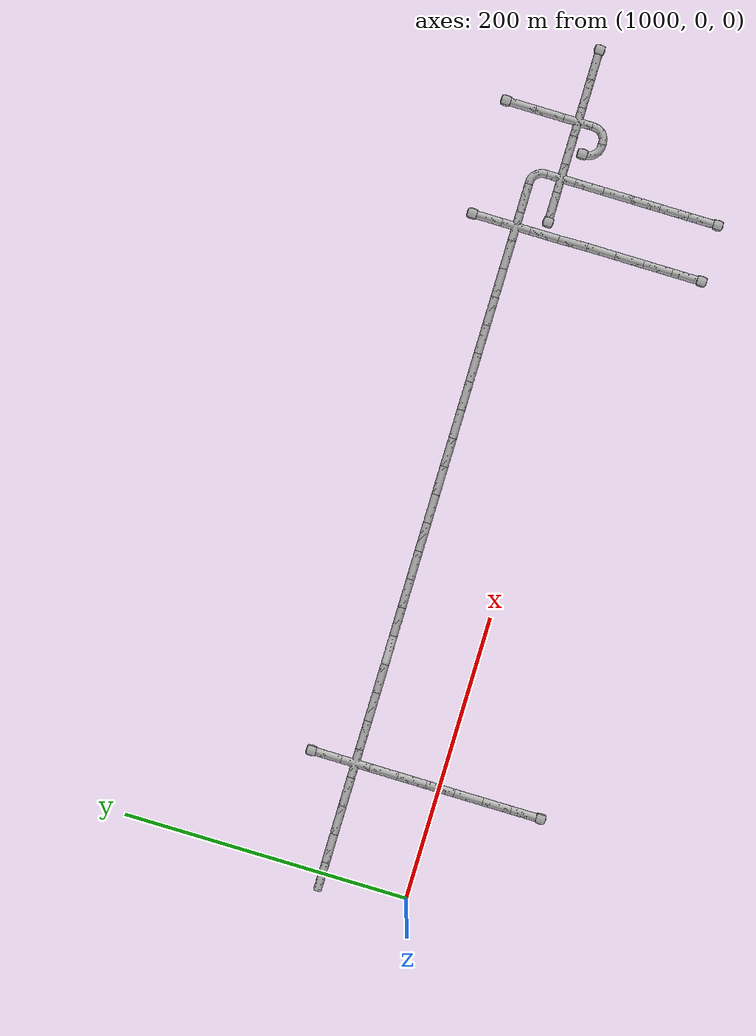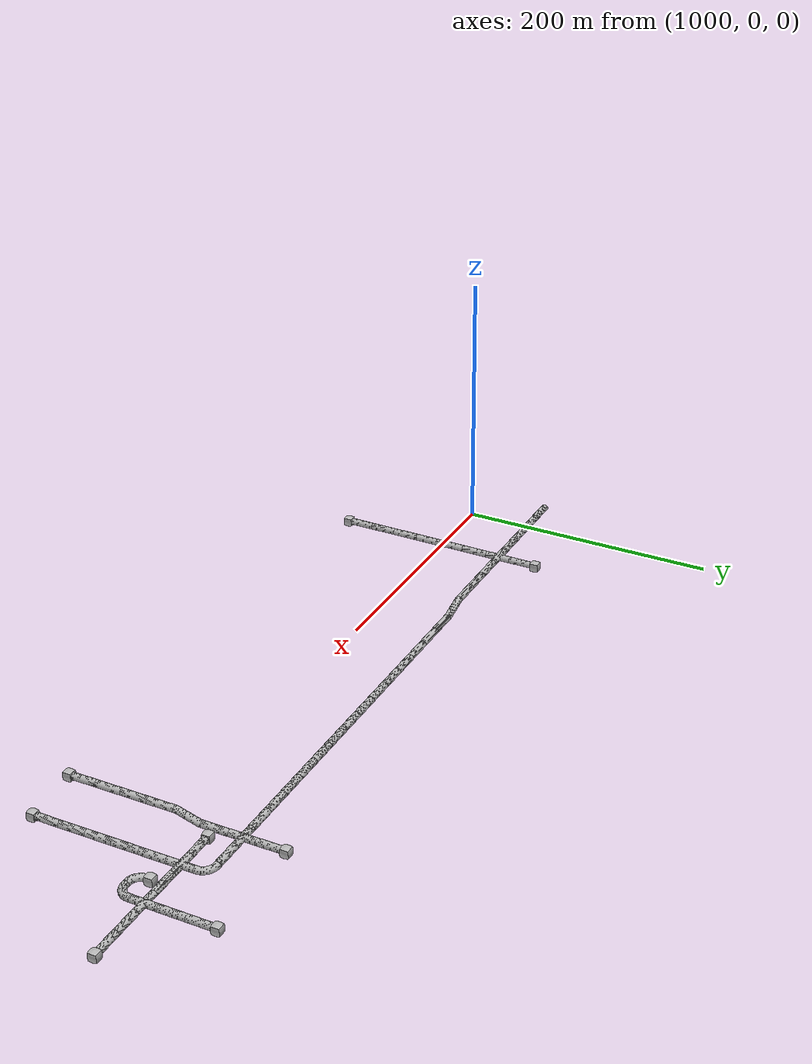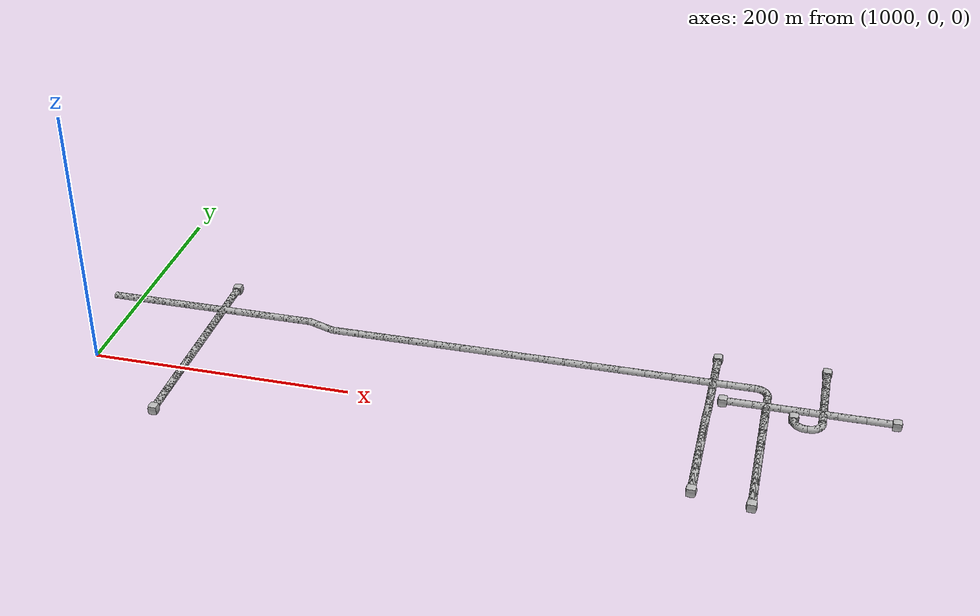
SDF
<sdf version="1.6">
 <world name="tunnel_circuit_04">
  <include>
   <name>tile_31</name>
   <uri>model://tunnel_tile_5</uri>
   <pose>1080.000000 80.000000 15.000000 0 0 3.141593</pose>
  </include>
  <include>
   <name>tile_32</name>
   <uri>model://tunnel_tile_blocker</uri>
   <pose>1080.000000 91.000000 15.000000 0 0 0.000000</pose>
  </include>
  <include>
   <name>extinguisher_1</name>
   <uri>model://Extinguisher</uri>
   <pose>1081.000000 83.000000 15.000000 0 0 0.000000</pose>
  </include>
  <include>
   <name>tile_33</name>
   <uri>model://tunnel_tile_5</uri>
   <pose>1460.000000 80.000000 10.000000 0 0 3.141593</pose>
  </include>
  <include>
   <name>tile_34</name>
   <uri>model://tunnel_tile_blocker</uri>
   <pose>1460.000000 91.000000 10.000000 0 0 0.000000</pose>
  </include>
  <include>
   <name>tile_35</name>
   <uri>model://tunnel_tile_5</uri>
   <pose>1540.000000 80.000000 10.000000 0 0 3.141593</pose>
  </include>
  <include>
   <name>tile_36</name>
   <uri>model://tunnel_tile_blocker</uri>
   <pose>1540.000000 91.000000 10.000000 0 0 0.000000</pose>
  </include>
  <include>
   <name>tile_65</name>
   <uri>model://tunnel_tile_5</uri>
   <pose>1000.000000 60.000000 15.000000 0 0 1.570796</pose>
  </include>
  <include>
   <name>tile_66</name>
   <uri>model://tunnel_tile_5</uri>
   <pose>1020.000000 60.000000 15.000000 0 0 1.570796</pose>
  </include>
  <include>
   <name>tile_67</name>
   <uri>model://tunnel_tile_5</uri>
   <pose>1040.000000 60.000000 15.000000 0 0 1.570796</pose>
  </include>
  <include>
   <name>tile_68</name>
   <uri>model://tunnel_tile_5</uri>
   <pose>1060.000000 60.000000 15.000000 0 0 1.570796</pose>
  </include>
  <include>
   <name>tile_69</name>
   <uri>model://tunnel_tile_1</uri>
   <pose>1080.000000 60.000000 15.000000 0 0 0.000000</pose>
  </include>
  <include>
   <name>tile_70</name>
   <uri>model://tunnel_tile_5</uri>
   <pose>1100.000000 60.000000 15.000000 0 0 1.570796</pose>
  </include>
  <include>
   <name>tile_71</name>
   <uri>model://tunnel_tile_5</uri>
   <pose>1120.000000 60.000000 15.000000 0 0 1.570796</pose>
  </include>
  <include>
   <name>tile_72</name>
   <uri>model://tunnel_tile_5</uri>
   <pose>1140.000000 60.000000 15.000000 0 0 1.570796</pose>
  </include>
  <include>
   <name>tile_73</name>
   <uri>model://tunnel_tile_6</uri>
   <pose>1160.000000 60.000000 10.000000 0 0 1.570796</pose>
  </include>
  <include>
   <name>tile_74</name>
   <uri>model://tunnel_tile_5</uri>
   <pose>1180.000000 60.000000 10.000000 0 0 1.570796</pose>
  </include>
  <include>
   <name>tile_75</name>
   <uri>model://tunnel_tile_5</uri>
   <pose>1200.000000 60.000000 10.000000 0 0 1.570796</pose>
  </include>
  <include>
   <name>tile_76</name>
   <uri>model://tunnel_tile_5</uri>
   <pose>1220.000000 60.000000 10.000000 0 0 1.570796</pose>
  </include>
  <include>
   <name>tile_77</name>
   <uri>model://tunnel_tile_5</uri>
   <pose>1240.000000 60.000000 10.000000 0 0 1.570796</pose>
  </include>
  <include>
   <name>tile_78</name>
   <uri>model://tunnel_tile_5</uri>
   <pose>1260.000000 60.000000 10.000000 0 0 1.570796</pose>
  </include>
  <include>
   <name>tile_79</name>
   <uri>model://tunnel_tile_5</uri>
   <pose>1280.000000 60.000000 10.000000 0 0 1.570796</pose>
  </include>
  <include>
   <name>tile_80</name>
   <uri>model://tunnel_tile_5</uri>
   <pose>1300.000000 60.000000 10.000000 0 0 1.570796</pose>
  </include>
  <include>
   <name>tile_81</name>
   <uri>model://tunnel_tile_5</uri>
   <pose>1320.000000 60.000000 10.000000 0 0 1.570796</pose>
  </include>
  <include>
   <name>tile_82</name>
   <uri>model://tunnel_tile_5</uri>
   <pose>1340.000000 60.000000 10.000000 0 0 1.570796</pose>
  </include>
  <include>
   <name>tile_83</name>
   <uri>model://tunnel_tile_5</uri>
   <pose>1360.000000 60.000000 10.000000 0 0 1.570796</pose>
  </include>
  <include>
   <name>tile_84</name>
   <uri>model://tunnel_tile_5</uri>
   <pose>1380.000000 60.000000 10.000000 0 0 1.570796</pose>
  </include>
  <include>
   <name>tile_85</name>
   <uri>model://tunnel_tile_5</uri>
   <pose>1400.000000 60.000000 10.000000 0 0 1.570796</pose>
  </include>
  <include>
   <name>tile_86</name>
   <uri>model://tunnel_tile_5</uri>
   <pose>1420.000000 60.000000 10.000000 0 0 1.570796</pose>
  </include>
  <include>
   <name>tile_87</name>
   <uri>model://tunnel_tile_5</uri>
   <pose>1440.000000 60.000000 10.000000 0 0 1.570796</pose>
  </include>
  <include>
   <name>tile_88</name>
   <uri>model://tunnel_tile_1</uri>
   <pose>1460.000000 60.000000 10.000000 0 0 0.000000</pose>
  </include>
  <include>
   <name>tile_89</name>
   <uri>model://tunnel_tile_5</uri>
   <pose>1480.000000 60.000000 10.000000 0 0 1.570796</pose>
  </include>
  <include>
   <name>tile_90</name>
   <uri>model://tunnel_tile_2</uri>
   <pose>1500.000000 60.000000 10.000000 0 0 4.712389</pose>
  </include>
  <include>
   <name>tile_91</name>
   <uri>model://tunnel_tile_5</uri>
   <pose>1540.000000 60.000000 10.000000 0 0 3.141593</pose>
  </include>
  <include>
   <name>tile_138</name>
   <uri>model://tunnel_tile_5</uri>
   <pose>1080.000000 40.000000 15.000000 0 0 0.000000</pose>
  </include>
  <include>
   <name>tile_139</name>
   <uri>model://tunnel_tile_5</uri>
   <pose>1460.000000 40.000000 10.000000 0 0 0.000000</pose>
  </include>
  <include>
   <name>tile_140</name>
   <uri>model://tunnel_tile_5</uri>
   <pose>1480.000000 40.000000 10.000000 0 0 4.712389</pose>
  </include>
  <include>
   <name>tile_141</name>
   <uri>model://tunnel_tile_blocker</uri>
   <pose>1469.000000 40.000000 10.000000 0 0 0.000000</pose>
  </include>
  <include>
   <name>tile_142</name>
   <uri>model://tunnel_tile_1</uri>
   <pose>1500.000000 40.000000 10.000000 0 0 0.000000</pose>
  </include>
  <include>
   <name>tile_143</name>
   <uri>model://tunnel_tile_5</uri>
   <pose>1520.000000 40.000000 10.000000 0 0 1.570796</pose>
  </include>
  <include>
   <name>tile_144</name>
   <uri>model://tunnel_tile_1</uri>
   <pose>1540.000000 40.000000 10.000000 0 0 0.000000</pose>
  </include>
  <include>
   <name>tile_145</name>
   <uri>model://tunnel_tile_5</uri>
   <pose>1560.000000 40.000000 10.000000 0 0 1.570796</pose>
  </include>
  <include>
   <name>tile_146</name>
   <uri>model://tunnel_tile_5</uri>
   <pose>1580.000000 40.000000 10.000000 0 0 1.570796</pose>
  </include>
  <include>
   <name>tile_147</name>
   <uri>model://tunnel_tile_blocker</uri>
   <pose>1591.000000 40.000000 10.000000 0 0 0.000000</pose>
  </include>
  <include>
   <name>tile_169</name>
   <uri>model://tunnel_tile_5</uri>
   <pose>1080.000000 20.000000 15.000000 0 0 0.000000</pose>
  </include>
  <include>
   <name>tile_170</name>
   <uri>model://tunnel_tile_6</uri>
   <pose>1460.000000 20.000000 10.000000 0 0 3.141593</pose>
  </include>
  <include>
   <name>tile_171</name>
   <uri>model://tunnel_tile_5</uri>
   <pose>1500.000000 20.000000 10.000000 0 0 0.000000</pose>
  </include>
  <include>
   <name>tile_172</name>
   <uri>model://tunnel_tile_2</uri>
   <pose>1520.000000 20.000000 10.000000 0 0 1.570796</pose>
  </include>
  <include>
   <name>tile_173</name>
   <uri>model://tunnel_tile_blocker</uri>
   <pose>1520.000000 31.000000 10.000000 0 0 0.000000</pose>
  </include>
  <include>
   <name>backpack_2</name>
   <uri>model://Backpack</uri>
   <pose>1520.000000 25.000000 10.000000 0 0 0.174533</pose>
  </include>
  <include>
   <name>tile_174</name>
   <uri>model://tunnel_tile_2</uri>
   <pose>1540.000000 20.000000 10.000000 0 0 3.141593</pose>
  </include>
  <include>
   <name>tile_209</name>
   <uri>model://tunnel_tile_5</uri>
   <pose>1080.000000 0.000000 15.000000 0 0 0.000000</pose>
  </include>
  <include>
   <name>tile_210</name>
   <uri>model://tunnel_tile_5</uri>
   <pose>1460.000000 0.000000 15.000000 0 0 0.000000</pose>
  </include>
  <include>
   <name>tile_211</name>
   <uri>model://tunnel_tile_5</uri>
   <pose>1500.000000 0.000000 10.000000 0 0 0.000000</pose>
  </include>
  <include>
   <name>tile_225</name>
   <uri>model://tunnel_tile_5</uri>
   <pose>1080.000000 -20.000000 15.000000 0 0 0.000000</pose>
  </include>
  <include>
   <name>tile_226</name>
   <uri>model://tunnel_tile_5</uri>
   <pose>1460.000000 -20.000000 15.000000 0 0 0.000000</pose>
  </include>
  <include>
   <name>tile_227</name>
   <uri>model://tunnel_tile_5</uri>
   <pose>1500.000000 -20.000000 10.000000 0 0 0.000000</pose>
  </include>
  <include>
   <name>tile_238</name>
   <uri>model://tunnel_tile_5</uri>
   <pose>1080.000000 -40.000000 15.000000 0 0 0.000000</pose>
  </include>
  <include>
   <name>tile_239</name>
   <uri>model://tunnel_tile_5</uri>
   <pose>1460.000000 -40.000000 15.000000 0 0 0.000000</pose>
  </include>
  <include>
   <name>tile_240</name>
   <uri>model://tunnel_tile_5</uri>
   <pose>1500.000000 -40.000000 10.000000 0 0 0.000000</pose>
  </include>
  <include>
   <name>tile_251</name>
   <uri>model://tunnel_tile_5</uri>
   <pose>1080.000000 -60.000000 15.000000 0 0 0.000000</pose>
  </include>
  <include>
   <name>tile_252</name>
   <uri>model://tunnel_tile_blocker</uri>
   <pose>1080.000000 -71.000000 15.000000 0 0 0.000000</pose>
  </include>
  <include>
   <name>tile_253</name>
   <uri>model://tunnel_tile_5</uri>
   <pose>1460.000000 -60.000000 15.000000 0 0 0.000000</pose>
  </include>
  <include>
   <name>tile_254</name>
   <uri>model://tunnel_tile_blocker</uri>
   <pose>1460.000000 -71.000000 15.000000 0 0 0.000000</pose>
  </include>
  <include>
   <name>extinguisher_4</name>
   <uri>model://Extinguisher</uri>
   <pose>1461.000000 -58.000000 15.000000 0 0 0.000000</pose>
  </include>
  <include>
   <name>tile_255</name>
   <uri>model://tunnel_tile_5</uri>
   <pose>1500.000000 -60.000000 10.000000 0 0 0.000000</pose>
  </include>
  <include>
   <name>tile_256</name>
   <uri>model://tunnel_tile_blocker</uri>
   <pose>1500.000000 -71.000000 10.000000 0 0 0.000000</pose>
  </include>
 </world>
</sdf>
